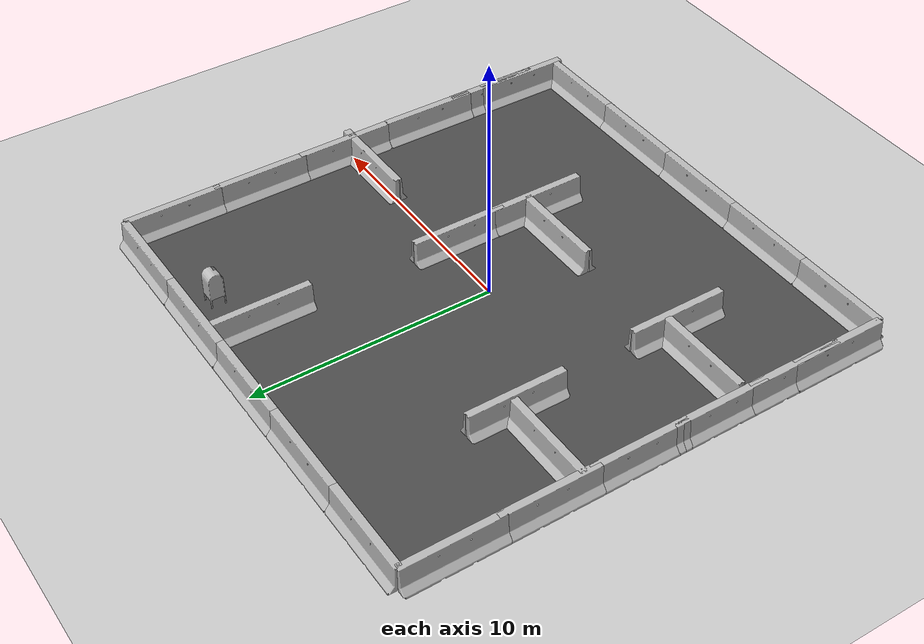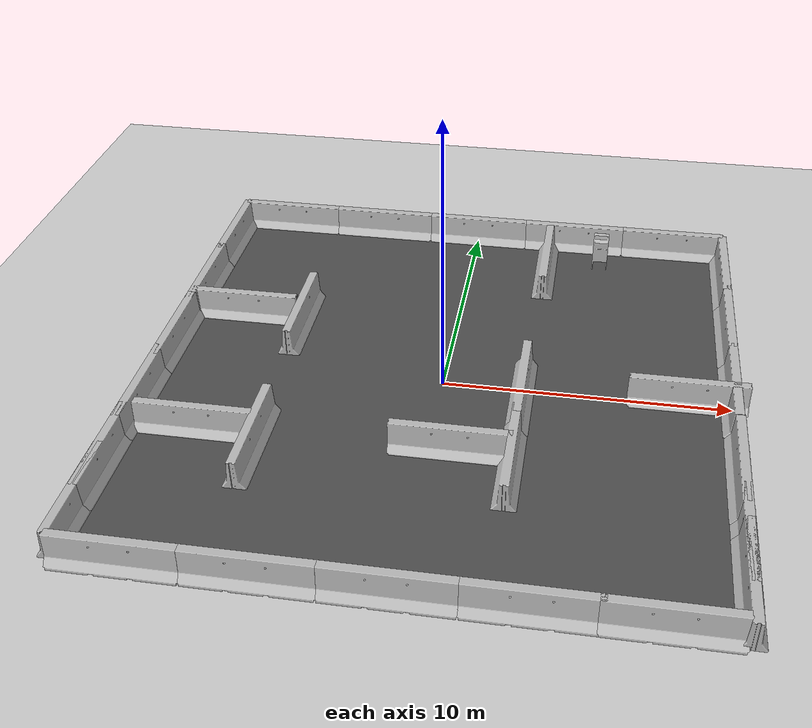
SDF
<sdf version="1.6">
 <world name="default">
  <light name="sun" type="directional">
   <pose>0 0 10 0 -0 0</pose>
   <diffuse>0.8 0.8 0.8 1</diffuse>
   <specular>0.2 0.2 0.2 1</specular>
   <attenuation>
    <range>1000</range>
    <constant>0.9</constant>
    <linear>0.01</linear>
    <quadratic>0.001</quadratic>
   </attenuation>
   <direction>-0.5 0.1 -0.9</direction>
  </light>
  <model name="ground_plane">
   <static>1</static>
   <link name="link">
    <collision name="collision">
     <geometry><plane><normal>0 0 1</normal><size>100 100</size></plane></geometry>
     <surface><friction><ode><mu>100</mu><mu2>50</mu2></ode></friction></surface>
    </collision>
    <visual name="visual">
     <cast_shadows>0</cast_shadows>
     <geometry><plane><normal>0 0 1</normal><size>100 100</size></plane></geometry>
     <material>
      <script><uri>file://media/materials/scripts/gazebo.material</uri><name>Gazebo/Grey</name></script>
     </material>
    </visual>
    <velocity_decay><linear>0</linear><angular>0</angular></velocity_decay>
   </link>
  </model>
  <physics name="default_physics" default="0" type="ode">
   <max_step_size>0.01</max_step_size>
   <real_time_factor>1</real_time_factor>
   <real_time_update_rate>100</real_time_update_rate>
  </physics>
  <scene><ambient>0.4 0.4 0.4 1</ambient><background>0.7 0.7 0.7 1</background><shadows>1</shadows></scene>
  <model name="jersey_barrier">
   <static>1</static>
   <link name="link">
    <visual name="visual">
     <geometry>
      <mesh><uri>model://jersey_barrier/meshes/jersey_barrier.dae</uri><scale>1 1 1</scale></mesh>
     </geometry>
    </visual>
    <collision name="upright">
     <pose>0 0 0.5715 0 -0 0</pose>
     <geometry><box><size>4.06542 0.3063 1.143</size></box></geometry>
    </collision>
    <collision name="base">
     <pose>0 0 0.032258 0 -0 0</pose>
     <geometry><box><size>4.06542 0.8107 0.064516</size></box></geometry>
    </collision>
    <collision name="base2">
     <pose>0 0 0.1 0 -0 0</pose>
     <geometry><box><size>4.06542 0.65 0.1</size></box></geometry>
    </collision>
    <collision name="base3">
     <pose>0 0 0.2 0 -0 0</pose>
     <geometry><box><size>4.06542 0.5 0.1</size></box></geometry>
    </collision>
    <collision name="left-angle">
     <pose>0 -0.224 0.2401 0.9 -0 0</pose>
     <geometry><box><size>4.06542 0.5 0.064516</size></box></geometry>
    </collision>
    <collision name="right-angle">
     <pose>0 0.224 0.2401 -0.9 0 0</pose>
     <geometry><box><size>4.06542 0.5 0.064516</size></box></geometry>
    </collision>
    <velocity_decay><linear>0</linear><angular>0</angular></velocity_decay>
   </link>
   <pose>-8 -10 0 0 -0 0</pose>
  </model>
  <model name="jersey_barrier_0">
   <static>1</static>
   <link name="link">
    <visual name="visual">
     <geometry>
      <mesh><uri>model://jersey_barrier/meshes/jersey_barrier.dae</uri><scale>1 1 1</scale></mesh>
     </geometry>
    </visual>
    <collision name="upright">
     <pose>0 0 0.5715 0 -0 0</pose>
     <geometry><box><size>4.06542 0.3063 1.143</size></box></geometry>
    </collision>
    <collision name="base">
     <pose>0 0 0.032258 0 -0 0</pose>
     <geometry><box><size>4.06542 0.8107 0.064516</size></box></geometry>
    </collision>
    <collision name="base2">
     <pose>0 0 0.1 0 -0 0</pose>
     <geometry><box><size>4.06542 0.65 0.1</size></box></geometry>
    </collision>
    <collision name="base3">
     <pose>0 0 0.2 0 -0 0</pose>
     <geometry><box><size>4.06542 0.5 0.1</size></box></geometry>
    </collision>
    <collision name="left-angle">
     <pose>0 -0.224 0.2401 0.9 -0 0</pose>
     <geometry><box><size>4.06542 0.5 0.064516</size></box></geometry>
    </collision>
    <collision name="right-angle">
     <pose>0 0.224 0.2401 -0.9 0 0</pose>
     <geometry><box><size>4.06542 0.5 0.064516</size></box></geometry>
    </collision>
    <velocity_decay><linear>0</linear><angular>0</angular></velocity_decay>
   </link>
   <pose>-4 -10 0 0 -0 0</pose>
  </model>
  <model name="jersey_barrier_1">
   <static>1</static>
   <link name="link">
    <visual name="visual">
     <geometry>
      <mesh><uri>model://jersey_barrier/meshes/jersey_barrier.dae</uri><scale>1 1 1</scale></mesh>
     </geometry>
    </visual>
    <collision name="upright">
     <pose>0 0 0.5715 0 -0 0</pose>
     <geometry><box><size>4.06542 0.3063 1.143</size></box></geometry>
    </collision>
    <collision name="base">
     <pose>0 0 0.032258 0 -0 0</pose>
     <geometry><box><size>4.06542 0.8107 0.064516</size></box></geometry>
    </collision>
    <collision name="base2">
     <pose>0 0 0.1 0 -0 0</pose>
     <geometry><box><size>4.06542 0.65 0.1</size></box></geometry>
    </collision>
    <collision name="base3">
     <pose>0 0 0.2 0 -0 0</pose>
     <geometry><box><size>4.06542 0.5 0.1</size></box></geometry>
    </collision>
    <collision name="left-angle">
     <pose>0 -0.224 0.2401 0.9 -0 0</pose>
     <geometry><box><size>4.06542 0.5 0.064516</size></box></geometry>
    </collision>
    <collision name="right-angle">
     <pose>0 0.224 0.2401 -0.9 0 0</pose>
     <geometry><box><size>4.06542 0.5 0.064516</size></box></geometry>
    </collision>
    <velocity_decay><linear>0</linear><angular>0</angular></velocity_decay>
   </link>
   <pose>0 -10 0 0 -0 0</pose>
  </model>
  <model name="jersey_barrier_2">
   <static>1</static>
   <link name="link">
    <visual name="visual">
     <geometry>
      <mesh><uri>model://jersey_barrier/meshes/jersey_barrier.dae</uri><scale>1 1 1</scale></mesh>
     </geometry>
    </visual>
    <collision name="upright">
     <pose>0 0 0.5715 0 -0 0</pose>
     <geometry><box><size>4.06542 0.3063 1.143</size></box></geometry>
    </collision>
    <collision name="base">
     <pose>0 0 0.032258 0 -0 0</pose>
     <geometry><box><size>4.06542 0.8107 0.064516</size></box></geometry>
    </collision>
    <collision name="base2">
     <pose>0 0 0.1 0 -0 0</pose>
     <geometry><box><size>4.06542 0.65 0.1</size></box></geometry>
    </collision>
    <collision name="base3">
     <pose>0 0 0.2 0 -0 0</pose>
     <geometry><box><size>4.06542 0.5 0.1</size></box></geometry>
    </collision>
    <collision name="left-angle">
     <pose>0 -0.224 0.2401 0.9 -0 0</pose>
     <geometry><box><size>4.06542 0.5 0.064516</size></box></geometry>
    </collision>
    <collision name="right-angle">
     <pose>0 0.224 0.2401 -0.9 0 0</pose>
     <geometry><box><size>4.06542 0.5 0.064516</size></box></geometry>
    </collision>
    <velocity_decay><linear>0</linear><angular>0</angular></velocity_decay>
   </link>
   <pose>4 -10 0 0 -0 0</pose>
  </model>
  <model name="jersey_barrier_3">
   <static>1</static>
   <link name="link">
    <visual name="visual">
     <geometry>
      <mesh><uri>model://jersey_barrier/meshes/jersey_barrier.dae</uri><scale>1 1 1</scale></mesh>
     </geometry>
    </visual>
    <collision name="upright">
     <pose>0 0 0.5715 0 -0 0</pose>
     <geometry><box><size>4.06542 0.3063 1.143</size></box></geometry>
    </collision>
    <collision name="base">
     <pose>0 0 0.032258 0 -0 0</pose>
     <geometry><box><size>4.06542 0.8107 0.064516</size></box></geometry>
    </collision>
    <collision name="base2">
     <pose>0 0 0.1 0 -0 0</pose>
     <geometry><box><size>4.06542 0.65 0.1</size></box></geometry>
    </collision>
    <collision name="base3">
     <pose>0 0 0.2 0 -0 0</pose>
     <geometry><box><size>4.06542 0.5 0.1</size></box></geometry>
    </collision>
    <collision name="left-angle">
     <pose>0 -0.224 0.2401 0.9 -0 0</pose>
     <geometry><box><size>4.06542 0.5 0.064516</size></box></geometry>
    </collision>
    <collision name="right-angle">
     <pose>0 0.224 0.2401 -0.9 0 0</pose>
     <geometry><box><size>4.06542 0.5 0.064516</size></box></geometry>
    </collision>
    <velocity_decay><linear>0</linear><angular>0</angular></velocity_decay>
   </link>
   <pose>-8 10 0 0 -0 0</pose>
  </model>
  <model name="jersey_barrier_4">
   <static>1</static>
   <link name="link">
    <visual name="visual">
     <geometry>
      <mesh><uri>model://jersey_barrier/meshes/jersey_barrier.dae</uri><scale>1 1 1</scale></mesh>
     </geometry>
    </visual>
    <collision name="upright">
     <pose>0 0 0.5715 0 -0 0</pose>
     <geometry><box><size>4.06542 0.3063 1.143</size></box></geometry>
    </collision>
    <collision name="base">
     <pose>0 0 0.032258 0 -0 0</pose>
     <geometry><box><size>4.06542 0.8107 0.064516</size></box></geometry>
    </collision>
    <collision name="base2">
     <pose>0 0 0.1 0 -0 0</pose>
     <geometry><box><size>4.06542 0.65 0.1</size></box></geometry>
    </collision>
    <collision name="base3">
     <pose>0 0 0.2 0 -0 0</pose>
     <geometry><box><size>4.06542 0.5 0.1</size></box></geometry>
    </collision>
    <collision name="left-angle">
     <pose>0 -0.224 0.2401 0.9 -0 0</pose>
     <geometry><box><size>4.06542 0.5 0.064516</size></box></geometry>
    </collision>
    <collision name="right-angle">
     <pose>0 0.224 0.2401 -0.9 0 0</pose>
     <geometry><box><size>4.06542 0.5 0.064516</size></box></geometry>
    </collision>
    <velocity_decay><linear>0</linear><angular>0</angular></velocity_decay>
   </link>
   <pose>-4 10 0 0 -0 0</pose>
  </model>
  <model name="jersey_barrier_5">
   <static>1</static>
   <link name="link">
    <visual name="visual">
     <geometry>
      <mesh><uri>model://jersey_barrier/meshes/jersey_barrier.dae</uri><scale>1 1 1</scale></mesh>
     </geometry>
    </visual>
    <collision name="upright">
     <pose>0 0 0.5715 0 -0 0</pose>
     <geometry><box><size>4.06542 0.3063 1.143</size></box></geometry>
    </collision>
    <collision name="base">
     <pose>0 0 0.032258 0 -0 0</pose>
     <geometry><box><size>4.06542 0.8107 0.064516</size></box></geometry>
    </collision>
    <collision name="base2">
     <pose>0 0 0.1 0 -0 0</pose>
     <geometry><box><size>4.06542 0.65 0.1</size></box></geometry>
    </collision>
    <collision name="base3">
     <pose>0 0 0.2 0 -0 0</pose>
     <geometry><box><size>4.06542 0.5 0.1</size></box></geometry>
    </collision>
    <collision name="left-angle">
     <pose>0 -0.224 0.2401 0.9 -0 0</pose>
     <geometry><box><size>4.06542 0.5 0.064516</size></box></geometry>
    </collision>
    <collision name="right-angle">
     <pose>0 0.224 0.2401 -0.9 0 0</pose>
     <geometry><box><size>4.06542 0.5 0.064516</size></box></geometry>
    </collision>
    <velocity_decay><linear>0</linear><angular>0</angular></velocity_decay>
   </link>
   <pose>0 10 0 0 -0 0</pose>
  </model>
  <model name="jersey_barrier_6">
   <static>1</static>
   <link name="link">
    <visual name="visual">
     <geometry>
      <mesh><uri>model://jersey_barrier/meshes/jersey_barrier.dae</uri><scale>1 1 1</scale></mesh>
     </geometry>
    </visual>
    <collision name="upright">
     <pose>0 0 0.5715 0 -0 0</pose>
     <geometry><box><size>4.06542 0.3063 1.143</size></box></geometry>
    </collision>
    <collision name="base">
     <pose>0 0 0.032258 0 -0 0</pose>
     <geometry><box><size>4.06542 0.8107 0.064516</size></box></geometry>
    </collision>
    <collision name="base2">
     <pose>0 0 0.1 0 -0 0</pose>
     <geometry><box><size>4.06542 0.65 0.1</size></box></geometry>
    </collision>
    <collision name="base3">
     <pose>0 0 0.2 0 -0 0</pose>
     <geometry><box><size>4.06542 0.5 0.1</size></box></geometry>
    </collision>
    <collision name="left-angle">
     <pose>0 -0.224 0.2401 0.9 -0 0</pose>
     <geometry><box><size>4.06542 0.5 0.064516</size></box></geometry>
    </collision>
    <collision name="right-angle">
     <pose>0 0.224 0.2401 -0.9 0 0</pose>
     <geometry><box><size>4.06542 0.5 0.064516</size></box></geometry>
    </collision>
    <velocity_decay><linear>0</linear><angular>0</angular></velocity_decay>
   </link>
   <pose>4 10 0 0 -0 0</pose>
  </model>
  <model name="jersey_barrier_7">
   <static>1</static>
   <link name="link">
    <visual name="visual">
     <geometry>
      <mesh><uri>model://jersey_barrier/meshes/jersey_barrier.dae</uri><scale>1 1 1</scale></mesh>
     </geometry>
    </visual>
    <collision name="upright">
     <pose>0 0 0.5715 0 -0 0</pose>
     <geometry><box><size>4.06542 0.3063 1.143</size></box></geometry>
    </collision>
    <collision name="base">
     <pose>0 0 0.032258 0 -0 0</pose>
     <geometry><box><size>4.06542 0.8107 0.064516</size></box></geometry>
    </collision>
    <collision name="base2">
     <pose>0 0 0.1 0 -0 0</pose>
     <geometry><box><size>4.06542 0.65 0.1</size></box></geometry>
    </collision>
    <collision name="base3">
     <pose>0 0 0.2 0 -0 0</pose>
     <geometry><box><size>4.06542 0.5 0.1</size></box></geometry>
    </collision>
    <collision name="left-angle">
     <pose>0 -0.224 0.2401 0.9 -0 0</pose>
     <geometry><box><size>4.06542 0.5 0.064516</size></box></geometry>
    </collision>
    <collision name="right-angle">
     <pose>0 0.224 0.2401 -0.9 0 0</pose>
     <geometry><box><size>4.06542 0.5 0.064516</size></box></geometry>
    </collision>
    <velocity_decay><linear>0</linear><angular>0</angular></velocity_decay>
   </link>
   <pose>10 0.42241 0 0 -0 1.57</pose>
  </model>
  <model name="jersey_barrier_8">
   <static>1</static>
   <link name="link">
    <visual name="visual">
     <geometry>
      <mesh><uri>model://jersey_barrier/meshes/jersey_barrier.dae</uri><scale>1 1 1</scale></mesh>
     </geometry>
    </visual>
    <collision name="upright">
     <pose>0 0 0.5715 0 -0 0</pose>
     <geometry><box><size>4.06542 0.3063 1.143</size></box></geometry>
    </collision>
    <collision name="base">
     <pose>0 0 0.032258 0 -0 0</pose>
     <geometry><box><size>4.06542 0.8107 0.064516</size></box></geometry>
    </collision>
    <collision name="base2">
     <pose>0 0 0.1 0 -0 0</pose>
     <geometry><box><size>4.06542 0.65 0.1</size></box></geometry>
    </collision>
    <collision name="base3">
     <pose>0 0 0.2 0 -0 0</pose>
     <geometry><box><size>4.06542 0.5 0.1</size></box></geometry>
    </collision>
    <collision name="left-angle">
     <pose>0 -0.224 0.2401 0.9 -0 0</pose>
     <geometry><box><size>4.06542 0.5 0.064516</size></box></geometry>
    </collision>
    <collision name="right-angle">
     <pose>0 0.224 0.2401 -0.9 0 0</pose>
     <geometry><box><size>4.06542 0.5 0.064516</size></box></geometry>
    </collision>
    <velocity_decay><linear>0</linear><angular>0</angular></velocity_decay>
   </link>
   <pose>10 4.24369 0 0 -0 1.57</pose>
  </model>
  <model name="jersey_barrier_9">
   <static>1</static>
   <link name="link">
    <visual name="visual">
     <geometry>
      <mesh><uri>model://jersey_barrier/meshes/jersey_barrier.dae</uri><scale>1 1 1</scale></mesh>
     </geometry>
    </visual>
    <collision name="upright">
     <pose>0 0 0.5715 0 -0 0</pose>
     <geometry><box><size>4.06542 0.3063 1.143</size></box></geometry>
    </collision>
    <collision name="base">
     <pose>0 0 0.032258 0 -0 0</pose>
     <geometry><box><size>4.06542 0.8107 0.064516</size></box></geometry>
    </collision>
    <collision name="base2">
     <pose>0 0 0.1 0 -0 0</pose>
     <geometry><box><size>4.06542 0.65 0.1</size></box></geometry>
    </collision>
    <collision name="base3">
     <pose>0 0 0.2 0 -0 0</pose>
     <geometry><box><size>4.06542 0.5 0.1</size></box></geometry>
    </collision>
    <collision name="left-angle">
     <pose>0 -0.224 0.2401 0.9 -0 0</pose>
     <geometry><box><size>4.06542 0.5 0.064516</size></box></geometry>
    </collision>
    <collision name="right-angle">
     <pose>0 0.224 0.2401 -0.9 0 0</pose>
     <geometry><box><size>4.06542 0.5 0.064516</size></box></geometry>
    </collision>
    <velocity_decay><linear>0</linear><angular>0</angular></velocity_decay>
   </link>
   <pose>-10 -2.69856 0 0 0 -1.57</pose>
  </model>
  <model name="jersey_barrier_10">
   <static>1</static>
   <link name="link">
    <visual name="visual">
     <geometry>
      <mesh><uri>model://jersey_barrier/meshes/jersey_barrier.dae</uri><scale>1 1 1</scale></mesh>
     </geometry>
    </visual>
    <collision name="upright">
     <pose>0 0 0.5715 0 -0 0</pose>
     <geometry><box><size>4.06542 0.3063 1.143</size></box></geometry>
    </collision>
    <collision name="base">
     <pose>0 0 0.032258 0 -0 0</pose>
     <geometry><box><size>4.06542 0.8107 0.064516</size></box></geometry>
    </collision>
    <collision name="base2">
     <pose>0 0 0.1 0 -0 0</pose>
     <geometry><box><size>4.06542 0.65 0.1</size></box></geometry>
    </collision>
    <collision name="base3">
     <pose>0 0 0.2 0 -0 0</pose>
     <geometry><box><size>4.06542 0.5 0.1</size></box></geometry>
    </collision>
    <collision name="left-angle">
     <pose>0 -0.224 0.2401 0.9 -0 0</pose>
     <geometry><box><size>4.06542 0.5 0.064516</size></box></geometry>
    </collision>
    <collision name="right-angle">
     <pose>0 0.224 0.2401 -0.9 0 0</pose>
     <geometry><box><size>4.06542 0.5 0.064516</size></box></geometry>
    </collision>
    <velocity_decay><linear>0</linear><angular>0</angular></velocity_decay>
   </link>
   <pose>-10 0.72841 0 0 -0 1.57</pose>
  </model>
  <model name="jersey_barrier_11">
   <static>1</static>
   <link name="link">
    <visual name="visual">
     <geometry>
      <mesh><uri>model://jersey_barrier/meshes/jersey_barrier.dae</uri><scale>1 1 1</scale></mesh>
     </geometry>
    </visual>
    <collision name="upright">
     <pose>0 0 0.5715 0 -0 0</pose>
     <geometry><box><size>4.06542 0.3063 1.143</size></box></geometry>
    </collision>
    <collision name="base">
     <pose>0 0 0.032258 0 -0 0</pose>
     <geometry><box><size>4.06542 0.8107 0.064516</size></box></geometry>
    </collision>
    <collision name="base2">
     <pose>0 0 0.1 0 -0 0</pose>
     <geometry><box><size>4.06542 0.65 0.1</size></box></geometry>
    </collision>
    <collision name="base3">
     <pose>0 0 0.2 0 -0 0</pose>
     <geometry><box><size>4.06542 0.5 0.1</size></box></geometry>
    </collision>
    <collision name="left-angle">
     <pose>0 -0.224 0.2401 0.9 -0 0</pose>
     <geometry><box><size>4.06542 0.5 0.064516</size></box></geometry>
    </collision>
    <collision name="right-angle">
     <pose>0 0.224 0.2401 -0.9 0 0</pose>
     <geometry><box><size>4.06542 0.5 0.064516</size></box></geometry>
    </collision>
    <velocity_decay><linear>0</linear><angular>0</angular></velocity_decay>
   </link>
   <pose>-10 4.34791 0 0 -0 1.57</pose>
  </model>
  <model name="jersey_barrier_12">
   <static>1</static>
   <link name="link">
    <visual name="visual">
     <geometry>
      <mesh><uri>model://jersey_barrier/meshes/jersey_barrier.dae</uri><scale>1 1 1</scale></mesh>
     </geometry>
    </visual>
    <collision name="upright">
     <pose>0 0 0.5715 0 -0 0</pose>
     <geometry><box><size>4.06542 0.3063 1.143</size></box></geometry>
    </collision>
    <collision name="base">
     <pose>0 0 0.032258 0 -0 0</pose>
     <geometry><box><size>4.06542 0.8107 0.064516</size></box></geometry>
    </collision>
    <collision name="base2">
     <pose>0 0 0.1 0 -0 0</pose>
     <geometry><box><size>4.06542 0.65 0.1</size></box></geometry>
    </collision>
    <collision name="base3">
     <pose>0 0 0.2 0 -0 0</pose>
     <geometry><box><size>4.06542 0.5 0.1</size></box></geometry>
    </collision>
    <collision name="left-angle">
     <pose>0 -0.224 0.2401 0.9 -0 0</pose>
     <geometry><box><size>4.06542 0.5 0.064516</size></box></geometry>
    </collision>
    <collision name="right-angle">
     <pose>0 0.224 0.2401 -0.9 0 0</pose>
     <geometry><box><size>4.06542 0.5 0.064516</size></box></geometry>
    </collision>
    <velocity_decay><linear>0</linear><angular>0</angular></velocity_decay>
   </link>
   <pose>10 -3.62159 0 0 -0 1.56</pose>
  </model>
  <model name="jersey_barrier_13">
   <static>1</static>
   <link name="link">
    <visual name="visual">
     <geometry>
      <mesh><uri>model://jersey_barrier/meshes/jersey_barrier.dae</uri><scale>1 1 1</scale></mesh>
     </geometry>
    </visual>
    <collision name="upright">
     <pose>0 0 0.5715 0 -0 0</pose>
     <geometry><box><size>4.06542 0.3063 1.143</size></box></geometry>
    </collision>
    <collision name="base">
     <pose>0 0 0.032258 0 -0 0</pose>
     <geometry><box><size>4.06542 0.8107 0.064516</size></box></geometry>
    </collision>
    <collision name="base2">
     <pose>0 0 0.1 0 -0 0</pose>
     <geometry><box><size>4.06542 0.65 0.1</size></box></geometry>
    </collision>
    <collision name="base3">
     <pose>0 0 0.2 0 -0 0</pose>
     <geometry><box><size>4.06542 0.5 0.1</size></box></geometry>
    </collision>
    <collision name="left-angle">
     <pose>0 -0.224 0.2401 0.9 -0 0</pose>
     <geometry><box><size>4.06542 0.5 0.064516</size></box></geometry>
    </collision>
    <collision name="right-angle">
     <pose>0 0.224 0.2401 -0.9 0 0</pose>
     <geometry><box><size>4.06542 0.5 0.064516</size></box></geometry>
    </collision>
    <velocity_decay><linear>0</linear><angular>0</angular></velocity_decay>
   </link>
   <pose>10 8 0 0 -0 1.57</pose>
  </model>
  <model name="jersey_barrier_14">
   <static>1</static>
   <link name="link">
    <visual name="visual">
     <geometry>
      <mesh><uri>model://jersey_barrier/meshes/jersey_barrier.dae</uri><scale>1 1 1</scale></mesh>
     </geometry>
    </visual>
    <collision name="upright">
     <pose>0 0 0.5715 0 -0 0</pose>
     <geometry><box><size>4.06542 0.3063 1.143</size></box></geometry>
    </collision>
    <collision name="base">
     <pose>0 0 0.032258 0 -0 0</pose>
     <geometry><box><size>4.06542 0.8107 0.064516</size></box></geometry>
    </collision>
    <collision name="base2">
     <pose>0 0 0.1 0 -0 0</pose>
     <geometry><box><size>4.06542 0.65 0.1</size></box></geometry>
    </collision>
    <collision name="base3">
     <pose>0 0 0.2 0 -0 0</pose>
     <geometry><box><size>4.06542 0.5 0.1</size></box></geometry>
    </collision>
    <collision name="left-angle">
     <pose>0 -0.224 0.2401 0.9 -0 0</pose>
     <geometry><box><size>4.06542 0.5 0.064516</size></box></geometry>
    </collision>
    <collision name="right-angle">
     <pose>0 0.224 0.2401 -0.9 0 0</pose>
     <geometry><box><size>4.06542 0.5 0.064516</size></box></geometry>
    </collision>
    <velocity_decay><linear>0</linear><angular>0</angular></velocity_decay>
   </link>
   <pose>-10 8.05946 0 0 -0 1.57</pose>
  </model>
  <model name="jersey_barrier_15">
   <static>1</static>
   <link name="link">
    <visual name="visual">
     <geometry>
      <mesh><uri>model://jersey_barrier/meshes/jersey_barrier.dae</uri><scale>1 1 1</scale></mesh>
     </geometry>
    </visual>
    <collision name="upright">
     <pose>0 0 0.5715 0 -0 0</pose>
     <geometry><box><size>4.06542 0.3063 1.143</size></box></geometry>
    </collision>
    <collision name="base">
     <pose>0 0 0.032258 0 -0 0</pose>
     <geometry><box><size>4.06542 0.8107 0.064516</size></box></geometry>
    </collision>
    <collision name="base2">
     <pose>0 0 0.1 0 -0 0</pose>
     <geometry><box><size>4.06542 0.65 0.1</size></box></geometry>
    </collision>
    <collision name="base3">
     <pose>0 0 0.2 0 -0 0</pose>
     <geometry><box><size>4.06542 0.5 0.1</size></box></geometry>
    </collision>
    <collision name="left-angle">
     <pose>0 -0.224 0.2401 0.9 -0 0</pose>
     <geometry><box><size>4.06542 0.5 0.064516</size></box></geometry>
    </collision>
    <collision name="right-angle">
     <pose>0 0.224 0.2401 -0.9 0 0</pose>
     <geometry><box><size>4.06542 0.5 0.064516</size></box></geometry>
    </collision>
    <velocity_decay><linear>0</linear><angular>0</angular></velocity_decay>
   </link>
   <pose>8.45495 0 0 0 -0 0</pose>
  </model>
  <model name="asphalt_plane">
   <static>1</static>
   <link name="link">
    <collision name="collision"><geometry><box><size>20 20 0.1</size></box></geometry></collision>
    <visual name="visual">
     <cast_shadows>0</cast_shadows>
     <geometry><box><size>20 20 0.1</size></box></geometry>
     <material>
      <script>
       <uri>model://asphalt_plane/materials/scripts</uri>
       <uri>model://asphalt_plane/materials/textures</uri>
       <name>vrc/asphalt</name>
      </script>
     </material>
    </visual>
    <velocity_decay><linear>0</linear><angular>0</angular></velocity_decay>
   </link>
   <pose>0.076733 -0.110379 0 0 -0 0</pose>
  </model>
  <gravity>0 0 -9.8</gravity>
  <magnetic_field>6e-06 2.3e-05 -4.2e-05</magnetic_field>
  <atmosphere type="adiabatic"/>
  <spherical_coordinates>
   <surface_model>EARTH_WGS84</surface_model>
   <latitude_deg>0</latitude_deg>
   <longitude_deg>0</longitude_deg>
   <elevation>0</elevation>
   <heading_deg>0</heading_deg>
  </spherical_coordinates>
  <model name="jersey_barrier_15_clone">
   <static>1</static>
   <link name="link">
    <visual name="visual">
     <geometry>
      <mesh><uri>model://jersey_barrier/meshes/jersey_barrier.dae</uri><scale>1 1 1</scale></mesh>
     </geometry>
    </visual>
    <collision name="upright">
     <pose>0 0 0.5715 0 -0 0</pose>
     <geometry><box><size>4.06542 0.3063 1.143</size></box></geometry>
    </collision>
    <collision name="base">
     <pose>0 0 0.032258 0 -0 0</pose>
     <geometry><box><size>4.06542 0.8107 0.064516</size></box></geometry>
    </collision>
    <collision name="base2">
     <pose>0 0 0.1 0 -0 0</pose>
     <geometry><box><size>4.06542 0.65 0.1</size></box></geometry>
    </collision>
    <collision name="base3">
     <pose>0 0 0.2 0 -0 0</pose>
     <geometry><box><size>4.06542 0.5 0.1</size></box></geometry>
    </collision>
    <collision name="left-angle">
     <pose>0 -0.224 0.2401 0.9 -0 0</pose>
     <geometry><box><size>4.06542 0.5 0.064516</size></box></geometry>
    </collision>
    <collision name="right-angle">
     <pose>0 0.224 0.2401 -0.9 0 0</pose>
     <geometry><box><size>4.06542 0.5 0.064516</size></box></geometry>
    </collision>
    <velocity_decay><linear>0</linear><angular>0</angular></velocity_decay>
   </link>
   <pose>8 10 0 0 -0 0</pose>
  </model>
  <model name="jersey_barrier_9_clone">
   <static>1</static>
   <link name="link">
    <visual name="visual">
     <geometry>
      <mesh><uri>model://jersey_barrier/meshes/jersey_barrier.dae</uri><scale>1 1 1</scale></mesh>
     </geometry>
    </visual>
    <collision name="upright">
     <pose>0 0 0.5715 0 -0 0</pose>
     <geometry><box><size>4.06542 0.3063 1.143</size></box></geometry>
    </collision>
    <collision name="base">
     <pose>0 0 0.032258 0 -0 0</pose>
     <geometry><box><size>4.06542 0.8107 0.064516</size></box></geometry>
    </collision>
    <collision name="base2">
     <pose>0 0 0.1 0 -0 0</pose>
     <geometry><box><size>4.06542 0.65 0.1</size></box></geometry>
    </collision>
    <collision name="base3">
     <pose>0 0 0.2 0 -0 0</pose>
     <geometry><box><size>4.06542 0.5 0.1</size></box></geometry>
    </collision>
    <collision name="left-angle">
     <pose>0 -0.224 0.2401 0.9 -0 0</pose>
     <geometry><box><size>4.06542 0.5 0.064516</size></box></geometry>
    </collision>
    <collision name="right-angle">
     <pose>0 0.224 0.2401 -0.9 0 0</pose>
     <geometry><box><size>4.06542 0.5 0.064516</size></box></geometry>
    </collision>
    <velocity_decay><linear>0</linear><angular>0</angular></velocity_decay>
   </link>
   <pose>-10 -5.99657 0 0 0 -1.57</pose>
  </model>
  <model name="jersey_barrier_9_clone_0">
   <static>1</static>
   <link name="link">
    <visual name="visual">
     <geometry>
      <mesh><uri>model://jersey_barrier/meshes/jersey_barrier.dae</uri><scale>1 1 1</scale></mesh>
     </geometry>
    </visual>
    <collision name="upright">
     <pose>0 0 0.5715 0 -0 0</pose>
     <geometry><box><size>4.06542 0.3063 1.143</size></box></geometry>
    </collision>
    <collision name="base">
     <pose>0 0 0.032258 0 -0 0</pose>
     <geometry><box><size>4.06542 0.8107 0.064516</size></box></geometry>
    </collision>
    <collision name="base2">
     <pose>0 0 0.1 0 -0 0</pose>
     <geometry><box><size>4.06542 0.65 0.1</size></box></geometry>
    </collision>
    <collision name="base3">
     <pose>0 0 0.2 0 -0 0</pose>
     <geometry><box><size>4.06542 0.5 0.1</size></box></geometry>
    </collision>
    <collision name="left-angle">
     <pose>0 -0.224 0.2401 0.9 -0 0</pose>
     <geometry><box><size>4.06542 0.5 0.064516</size></box></geometry>
    </collision>
    <collision name="right-angle">
     <pose>0 0.224 0.2401 -0.9 0 0</pose>
     <geometry><box><size>4.06542 0.5 0.064516</size></box></geometry>
    </collision>
    <velocity_decay><linear>0</linear><angular>0</angular></velocity_decay>
   </link>
   <pose>-10.0076 -8 0 0 0 -1.57</pose>
  </model>
  <model name="jersey_barrier_2_clone">
   <static>1</static>
   <link name="link">
    <visual name="visual">
     <geometry>
      <mesh><uri>model://jersey_barrier/meshes/jersey_barrier.dae</uri><scale>1 1 1</scale></mesh>
     </geometry>
    </visual>
    <collision name="upright">
     <pose>0 0 0.5715 0 -0 0</pose>
     <geometry><box><size>4.06542 0.3063 1.143</size></box></geometry>
    </collision>
    <collision name="base">
     <pose>0 0 0.032258 0 -0 0</pose>
     <geometry><box><size>4.06542 0.8107 0.064516</size></box></geometry>
    </collision>
    <collision name="base2">
     <pose>0 0 0.1 0 -0 0</pose>
     <geometry><box><size>4.06542 0.65 0.1</size></box></geometry>
    </collision>
    <collision name="base3">
     <pose>0 0 0.2 0 -0 0</pose>
     <geometry><box><size>4.06542 0.5 0.1</size></box></geometry>
    </collision>
    <collision name="left-angle">
     <pose>0 -0.224 0.2401 0.9 -0 0</pose>
     <geometry><box><size>4.06542 0.5 0.064516</size></box></geometry>
    </collision>
    <collision name="right-angle">
     <pose>0 0.224 0.2401 -0.9 0 0</pose>
     <geometry><box><size>4.06542 0.5 0.064516</size></box></geometry>
    </collision>
    <velocity_decay><linear>0</linear><angular>0</angular></velocity_decay>
   </link>
   <pose>7.82141 -10.0058 0 0 -0 0</pose>
  </model>
  <model name="jersey_barrier_12_clone">
   <static>1</static>
   <link name="link">
    <visual name="visual">
     <geometry>
      <mesh><uri>model://jersey_barrier/meshes/jersey_barrier.dae</uri><scale>1 1 1</scale></mesh>
     </geometry>
    </visual>
    <collision name="upright">
     <pose>0 0 0.5715 0 -0 0</pose>
     <geometry><box><size>4.06542 0.3063 1.143</size></box></geometry>
    </collision>
    <collision name="base">
     <pose>0 0 0.032258 0 -0 0</pose>
     <geometry><box><size>4.06542 0.8107 0.064516</size></box></geometry>
    </collision>
    <collision name="base2">
     <pose>0 0 0.1 0 -0 0</pose>
     <geometry><box><size>4.06542 0.65 0.1</size></box></geometry>
    </collision>
    <collision name="base3">
     <pose>0 0 0.2 0 -0 0</pose>
     <geometry><box><size>4.06542 0.5 0.1</size></box></geometry>
    </collision>
    <collision name="left-angle">
     <pose>0 -0.224 0.2401 0.9 -0 0</pose>
     <geometry><box><size>4.06542 0.5 0.064516</size></box></geometry>
    </collision>
    <collision name="right-angle">
     <pose>0 0.224 0.2401 -0.9 0 0</pose>
     <geometry><box><size>4.06542 0.5 0.064516</size></box></geometry>
    </collision>
    <velocity_decay><linear>0</linear><angular>0</angular></velocity_decay>
   </link>
   <pose>9.98058 -6.78718 0 0 -0 1.56</pose>
  </model>
  <model name="jersey_barrier_12_clone_0">
   <static>1</static>
   <link name="link">
    <visual name="visual">
     <geometry>
      <mesh><uri>model://jersey_barrier/meshes/jersey_barrier.dae</uri><scale>1 1 1</scale></mesh>
     </geometry>
    </visual>
    <collision name="upright">
     <pose>0 0 0.5715 0 -0 0</pose>
     <geometry><box><size>4.06542 0.3063 1.143</size></box></geometry>
    </collision>
    <collision name="base">
     <pose>0 0 0.032258 0 -0 0</pose>
     <geometry><box><size>4.06542 0.8107 0.064516</size></box></geometry>
    </collision>
    <collision name="base2">
     <pose>0 0 0.1 0 -0 0</pose>
     <geometry><box><size>4.06542 0.65 0.1</size></box></geometry>
    </collision>
    <collision name="base3">
     <pose>0 0 0.2 0 -0 0</pose>
     <geometry><box><size>4.06542 0.5 0.1</size></box></geometry>
    </collision>
    <collision name="left-angle">
     <pose>0 -0.224 0.2401 0.9 -0 0</pose>
     <geometry><box><size>4.06542 0.5 0.064516</size></box></geometry>
    </collision>
    <collision name="right-angle">
     <pose>0 0.224 0.2401 -0.9 0 0</pose>
     <geometry><box><size>4.06542 0.5 0.064516</size></box></geometry>
    </collision>
    <velocity_decay><linear>0</linear><angular>0</angular></velocity_decay>
   </link>
   <pose>9.95925 -8.26956 0 0 -0 1.56</pose>
  </model>
  <model name="jersey_barrier_15_clone_0">
   <static>1</static>
   <link name="link">
    <visual name="visual">
     <geometry>
      <mesh><uri>model://jersey_barrier/meshes/jersey_barrier.dae</uri><scale>1 1 1</scale></mesh>
     </geometry>
    </visual>
    <collision name="upright">
     <pose>0 0 0.5715 0 -0 0</pose>
     <geometry><box><size>4.06542 0.3063 1.143</size></box></geometry>
    </collision>
    <collision name="base">
     <pose>0 0 0.032258 0 -0 0</pose>
     <geometry><box><size>4.06542 0.8107 0.064516</size></box></geometry>
    </collision>
    <collision name="base2">
     <pose>0 0 0.1 0 -0 0</pose>
     <geometry><box><size>4.06542 0.65 0.1</size></box></geometry>
    </collision>
    <collision name="base3">
     <pose>0 0 0.2 0 -0 0</pose>
     <geometry><box><size>4.06542 0.5 0.1</size></box></geometry>
    </collision>
    <collision name="left-angle">
     <pose>0 -0.224 0.2401 0.9 -0 0</pose>
     <geometry><box><size>4.06542 0.5 0.064516</size></box></geometry>
    </collision>
    <collision name="right-angle">
     <pose>0 0.224 0.2401 -0.9 0 0</pose>
     <geometry><box><size>4.06542 0.5 0.064516</size></box></geometry>
    </collision>
    <velocity_decay><linear>0</linear><angular>0</angular></velocity_decay>
   </link>
   <pose>-8.04256 3.01504 0 0 -0 0</pose>
  </model>
  <model name="jersey_barrier_8_clone">
   <static>1</static>
   <link name="link">
    <visual name="visual">
     <geometry>
      <mesh><uri>model://jersey_barrier/meshes/jersey_barrier.dae</uri><scale>1 1 1</scale></mesh>
     </geometry>
    </visual>
    <collision name="upright">
     <pose>0 0 0.5715 0 -0 0</pose>
     <geometry><box><size>4.06542 0.3063 1.143</size></box></geometry>
    </collision>
    <collision name="base">
     <pose>0 0 0.032258 0 -0 0</pose>
     <geometry><box><size>4.06542 0.8107 0.064516</size></box></geometry>
    </collision>
    <collision name="base2">
     <pose>0 0 0.1 0 -0 0</pose>
     <geometry><box><size>4.06542 0.65 0.1</size></box></geometry>
    </collision>
    <collision name="base3">
     <pose>0 0 0.2 0 -0 0</pose>
     <geometry><box><size>4.06542 0.5 0.1</size></box></geometry>
    </collision>
    <collision name="left-angle">
     <pose>0 -0.224 0.2401 0.9 -0 0</pose>
     <geometry><box><size>4.06542 0.5 0.064516</size></box></geometry>
    </collision>
    <collision name="right-angle">
     <pose>0 0.224 0.2401 -0.9 0 0</pose>
     <geometry><box><size>4.06542 0.5 0.064516</size></box></geometry>
    </collision>
    <velocity_decay><linear>0</linear><angular>0</angular></velocity_decay>
   </link>
   <pose>3.01017 7.8586 0 0 -0 1.57</pose>
  </model>
  <model name="jersey_barrier_8_clone_0">
   <static>1</static>
   <link name="link">
    <visual name="visual">
     <geometry>
      <mesh><uri>model://jersey_barrier/meshes/jersey_barrier.dae</uri><scale>1 1 1</scale></mesh>
     </geometry>
    </visual>
    <collision name="upright">
     <pose>0 0 0.5715 0 -0 0</pose>
     <geometry><box><size>4.06542 0.3063 1.143</size></box></geometry>
    </collision>
    <collision name="base">
     <pose>0 0 0.032258 0 -0 0</pose>
     <geometry><box><size>4.06542 0.8107 0.064516</size></box></geometry>
    </collision>
    <collision name="base2">
     <pose>0 0 0.1 0 -0 0</pose>
     <geometry><box><size>4.06542 0.65 0.1</size></box></geometry>
    </collision>
    <collision name="base3">
     <pose>0 0 0.2 0 -0 0</pose>
     <geometry><box><size>4.06542 0.5 0.1</size></box></geometry>
    </collision>
    <collision name="left-angle">
     <pose>0 -0.224 0.2401 0.9 -0 0</pose>
     <geometry><box><size>4.06542 0.5 0.064516</size></box></geometry>
    </collision>
    <collision name="right-angle">
     <pose>0 0.224 0.2401 -0.9 0 0</pose>
     <geometry><box><size>4.06542 0.5 0.064516</size></box></geometry>
    </collision>
    <velocity_decay><linear>0</linear><angular>0</angular></velocity_decay>
   </link>
   <pose>2.82289 -0.506126 0 0 -0 1.57</pose>
  </model>
  <model name="jersey_barrier_8_clone_1">
   <static>1</static>
   <link name="link">
    <visual name="visual">
     <geometry>
      <mesh><uri>model://jersey_barrier/meshes/jersey_barrier.dae</uri><scale>1 1 1</scale></mesh>
     </geometry>
    </visual>
    <collision name="upright">
     <pose>0 0 0.5715 0 -0 0</pose>
     <geometry><box><size>4.06542 0.3063 1.143</size></box></geometry>
    </collision>
    <collision name="base">
     <pose>0 0 0.032258 0 -0 0</pose>
     <geometry><box><size>4.06542 0.8107 0.064516</size></box></geometry>
    </collision>
    <collision name="base2">
     <pose>0 0 0.1 0 -0 0</pose>
     <geometry><box><size>4.06542 0.65 0.1</size></box></geometry>
    </collision>
    <collision name="base3">
     <pose>0 0 0.2 0 -0 0</pose>
     <geometry><box><size>4.06542 0.5 0.1</size></box></geometry>
    </collision>
    <collision name="left-angle">
     <pose>0 -0.224 0.2401 0.9 -0 0</pose>
     <geometry><box><size>4.06542 0.5 0.064516</size></box></geometry>
    </collision>
    <collision name="right-angle">
     <pose>0 0.224 0.2401 -0.9 0 0</pose>
     <geometry><box><size>4.06542 0.5 0.064516</size></box></geometry>
    </collision>
    <velocity_decay><linear>0</linear><angular>0</angular></velocity_decay>
   </link>
   <pose>2.80667 -4.06958 0 0 -0 1.57</pose>
  </model>
  <model name="jersey_barrier_8_clone_2">
   <static>1</static>
   <link name="link">
    <visual name="visual">
     <geometry>
      <mesh><uri>model://jersey_barrier/meshes/jersey_barrier.dae</uri><scale>1 1 1</scale></mesh>
     </geometry>
    </visual>
    <collision name="upright">
     <pose>0 0 0.5715 0 -0 0</pose>
     <geometry><box><size>4.06542 0.3063 1.143</size></box></geometry>
    </collision>
    <collision name="base">
     <pose>0 0 0.032258 0 -0 0</pose>
     <geometry><box><size>4.06542 0.8107 0.064516</size></box></geometry>
    </collision>
    <collision name="base2">
     <pose>0 0 0.1 0 -0 0</pose>
     <geometry><box><size>4.06542 0.65 0.1</size></box></geometry>
    </collision>
    <collision name="base3">
     <pose>0 0 0.2 0 -0 0</pose>
     <geometry><box><size>4.06542 0.5 0.1</size></box></geometry>
    </collision>
    <collision name="left-angle">
     <pose>0 -0.224 0.2401 0.9 -0 0</pose>
     <geometry><box><size>4.06542 0.5 0.064516</size></box></geometry>
    </collision>
    <collision name="right-angle">
     <pose>0 0.224 0.2401 -0.9 0 0</pose>
     <geometry><box><size>4.06542 0.5 0.064516</size></box></geometry>
    </collision>
    <velocity_decay><linear>0</linear><angular>0</angular></velocity_decay>
   </link>
   <pose>-5.78945 2.77368 0 0 -0 1.57</pose>
  </model>
  <model name="jersey_barrier_15_clone_1">
   <static>1</static>
   <link name="link">
    <visual name="visual">
     <geometry>
      <mesh><uri>model://jersey_barrier/meshes/jersey_barrier.dae</uri><scale>1 1 1</scale></mesh>
     </geometry>
    </visual>
    <collision name="upright">
     <pose>0 0 0.5715 0 -0 0</pose>
     <geometry><box><size>4.06542 0.3063 1.143</size></box></geometry>
    </collision>
    <collision name="base">
     <pose>0 0 0.032258 0 -0 0</pose>
     <geometry><box><size>4.06542 0.8107 0.064516</size></box></geometry>
    </collision>
    <collision name="base2">
     <pose>0 0 0.1 0 -0 0</pose>
     <geometry><box><size>4.06542 0.65 0.1</size></box></geometry>
    </collision>
    <collision name="base3">
     <pose>0 0 0.2 0 -0 0</pose>
     <geometry><box><size>4.06542 0.5 0.1</size></box></geometry>
    </collision>
    <collision name="left-angle">
     <pose>0 -0.224 0.2401 0.9 -0 0</pose>
     <geometry><box><size>4.06542 0.5 0.064516</size></box></geometry>
    </collision>
    <collision name="right-angle">
     <pose>0 0.224 0.2401 -0.9 0 0</pose>
     <geometry><box><size>4.06542 0.5 0.064516</size></box></geometry>
    </collision>
    <velocity_decay><linear>0</linear><angular>0</angular></velocity_decay>
   </link>
   <pose>0.811488 -3.64308 0 0 -0 0</pose>
  </model>
  <model name="jersey_barrier_15_clone_2">
   <static>1</static>
   <link name="link">
    <visual name="visual">
     <geometry>
      <mesh><uri>model://jersey_barrier/meshes/jersey_barrier.dae</uri><scale>1 1 1</scale></mesh>
     </geometry>
    </visual>
    <collision name="upright">
     <pose>0 0 0.5715 0 -0 0</pose>
     <geometry><box><size>4.06542 0.3063 1.143</size></box></geometry>
    </collision>
    <collision name="base">
     <pose>0 0 0.032258 0 -0 0</pose>
     <geometry><box><size>4.06542 0.8107 0.064516</size></box></geometry>
    </collision>
    <collision name="base2">
     <pose>0 0 0.1 0 -0 0</pose>
     <geometry><box><size>4.06542 0.65 0.1</size></box></geometry>
    </collision>
    <collision name="base3">
     <pose>0 0 0.2 0 -0 0</pose>
     <geometry><box><size>4.06542 0.5 0.1</size></box></geometry>
    </collision>
    <collision name="left-angle">
     <pose>0 -0.224 0.2401 0.9 -0 0</pose>
     <geometry><box><size>4.06542 0.5 0.064516</size></box></geometry>
    </collision>
    <collision name="right-angle">
     <pose>0 0.224 0.2401 -0.9 0 0</pose>
     <geometry><box><size>4.06542 0.5 0.064516</size></box></geometry>
    </collision>
    <velocity_decay><linear>0</linear><angular>0</angular></velocity_decay>
   </link>
   <pose>-7.7187 -3.83237 0 0 -0 0</pose>
  </model>
  <model name="jersey_barrier_8_clone_0_clone">
   <static>1</static>
   <link name="link">
    <visual name="visual">
     <geometry>
      <mesh><uri>model://jersey_barrier/meshes/jersey_barrier.dae</uri><scale>1 1 1</scale></mesh>
     </geometry>
    </visual>
    <collision name="upright">
     <pose>0 0 0.5715 0 -0 0</pose>
     <geometry><box><size>4.06542 0.3063 1.143</size></box></geometry>
    </collision>
    <collision name="base">
     <pose>0 0 0.032258 0 -0 0</pose>
     <geometry><box><size>4.06542 0.8107 0.064516</size></box></geometry>
    </collision>
    <collision name="base2">
     <pose>0 0 0.1 0 -0 0</pose>
     <geometry><box><size>4.06542 0.65 0.1</size></box></geometry>
    </collision>
    <collision name="base3">
     <pose>0 0 0.2 0 -0 0</pose>
     <geometry><box><size>4.06542 0.5 0.1</size></box></geometry>
    </collision>
    <collision name="left-angle">
     <pose>0 -0.224 0.2401 0.9 -0 0</pose>
     <geometry><box><size>4.06542 0.5 0.064516</size></box></geometry>
    </collision>
    <collision name="right-angle">
     <pose>0 0.224 0.2401 -0.9 0 0</pose>
     <geometry><box><size>4.06542 0.5 0.064516</size></box></geometry>
    </collision>
    <velocity_decay><linear>0</linear><angular>0</angular></velocity_decay>
   </link>
   <pose>-5.59919 -4.3572 0 0 -0 1.57</pose>
  </model>
  <audio><device>default</device></audio>
  <model name="postbox">
   <static>1</static>
   <link name="link">
    <collision name="collision">
     <geometry><mesh><uri>model://postbox/meshes/postbox.dae</uri></mesh></geometry>
    </collision>
    <visual name="visual"><geometry><mesh><uri>model://postbox/meshes/postbox.dae</uri></mesh></geometry></visual>
   </link>
   <pose>5.13307 8.732 0 0 -0 0</pose>
  </model>
 </world>
</sdf>
